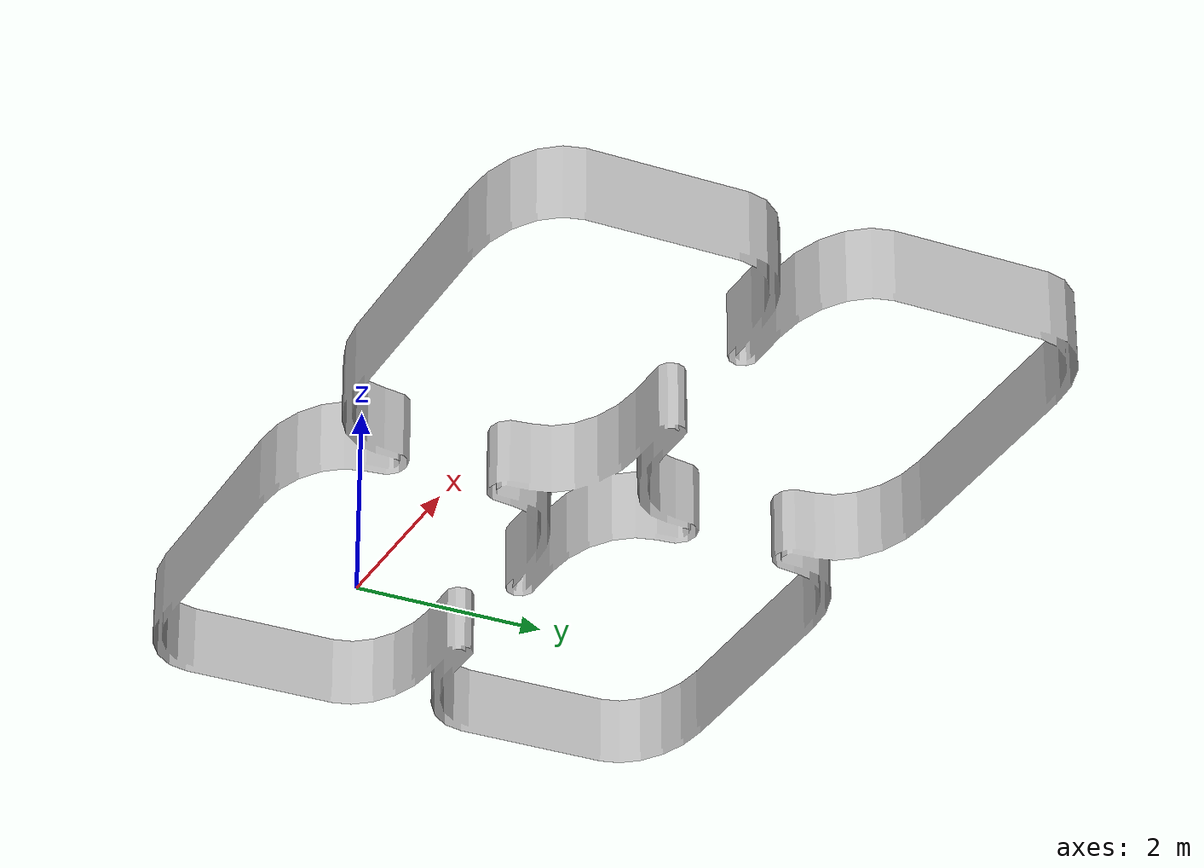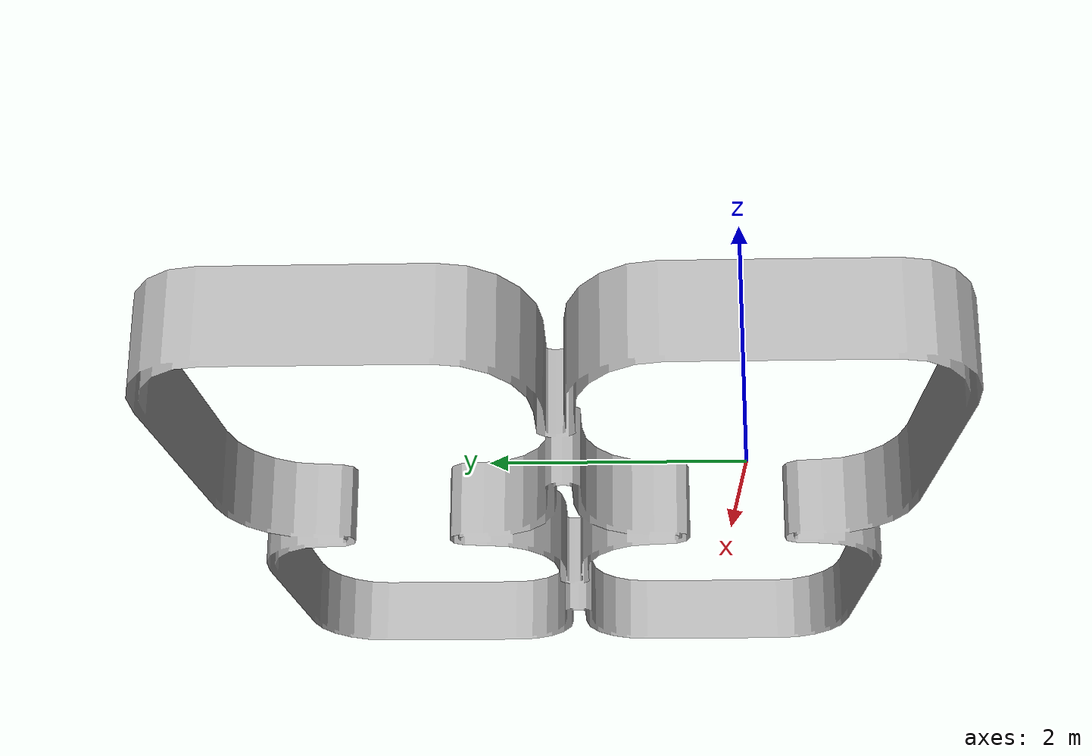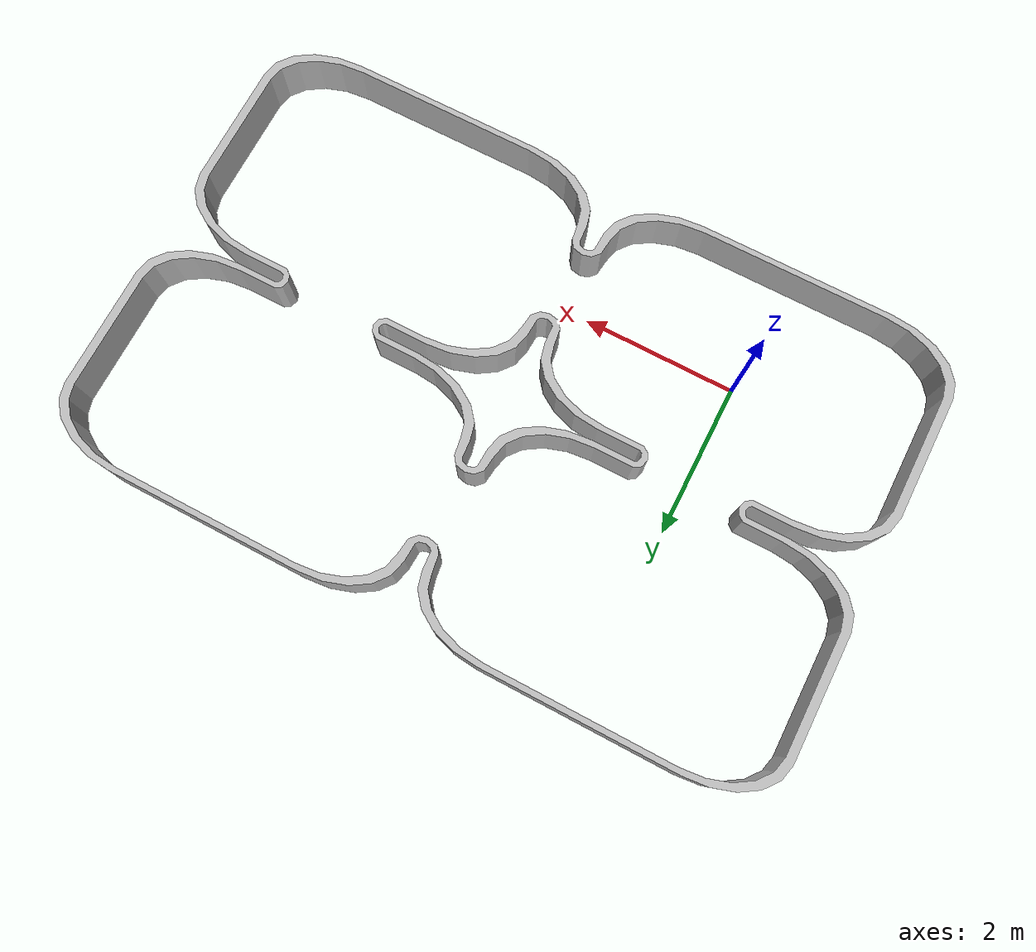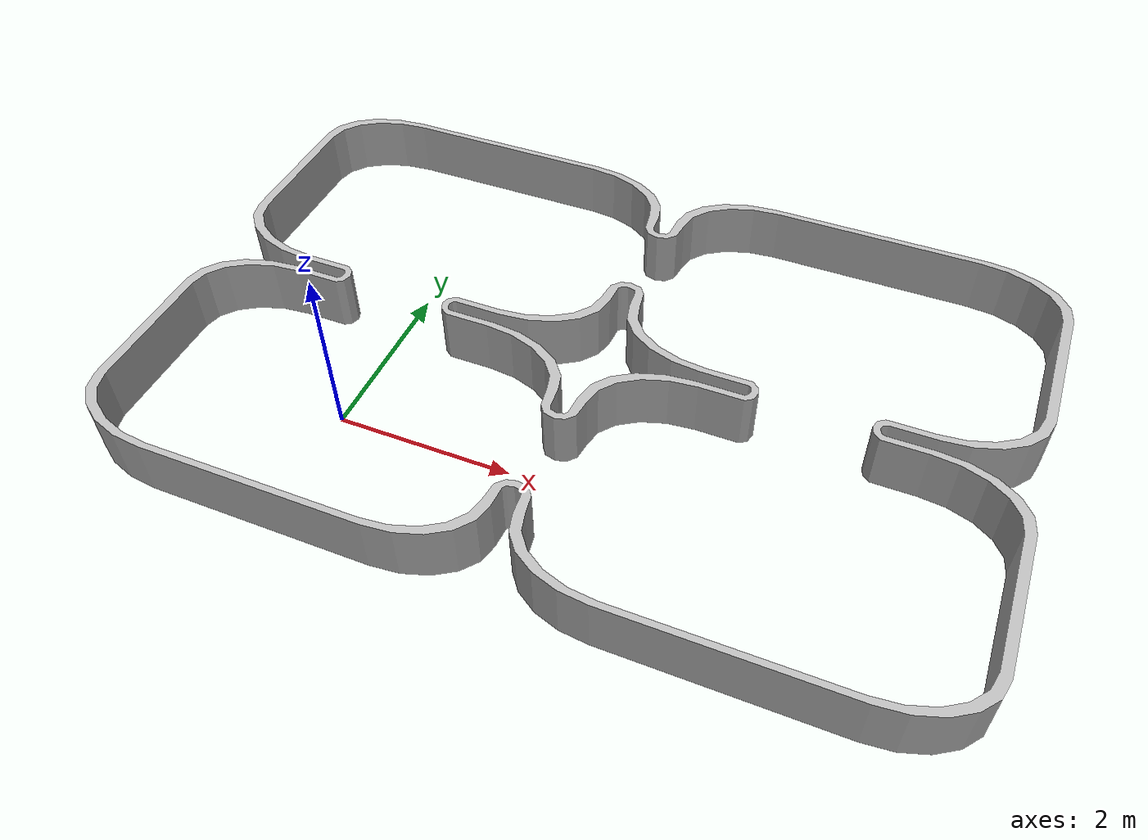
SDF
<?xml version="1.0"?>
<sdf version="1.5">
  <model name="Walls">
    <static>true</static>
    <link name="main">
      <visual name="visual">
        <pose>0 0 0 0 0 0</pose>
		<geometry>
			<mesh>
				<uri>model://world/Walls/Walls.dae</uri>
			</mesh>
		</geometry>
      </visual>
      <collision name="collision">
        <pose>0 0 0 0 0 0</pose>
		<geometry>
			<mesh>
				<uri>model://world/Walls/Walls.dae</uri>
			</mesh>
		</geometry>
        <surface>
          <friction>
            <ode>
              <mu>0.1</mu>
              <mu2>0.1</mu2>
            </ode>
          </friction>
        </surface>
      </collision>
    </link>
  </model>
</sdf>
